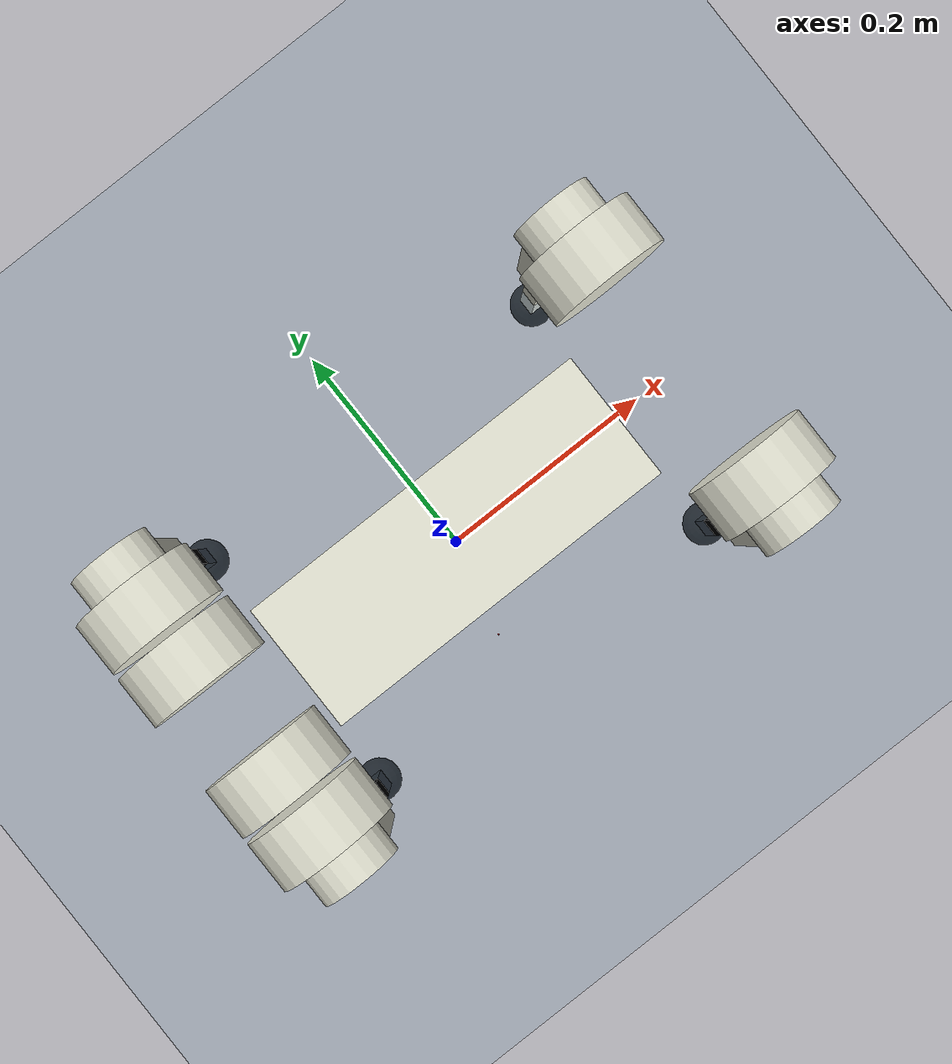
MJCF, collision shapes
<mujoco model="go1_description">
    <compiler angle="radian" meshdir="../meshes/" />
    <size njmax="500" nconmax="100" />
    <option gravity='0 0 -9.806' iterations='50' solver='Newton' timestep='0.005'/>
<!-- friction="0.6 0.3 0.3" -->
    <default>
        <geom contype="1" conaffinity="1" friction="0.3 0.3 0.3" rgba="0.5 0.6 0.7 1" margin="0.001" group="0"/>

        <light castshadow="false" diffuse="1 1 1"/>
        <motor ctrlrange="-300 300" ctrllimited="true"/>
        <camera fovy="60"/>
        <!-- damping="0.1" armature="0.01" frictionloss="0.2"-->
        <joint damping="0.3" armature="0.01" frictionloss="0.1" />

    </default>
=
    <asset>
        <mesh name="trunk" file="trunk.stl" />
        <mesh name="hip" file="hip.stl" />
        <mesh name="thigh_mirror" file="thigh_mirror.stl" />
        <mesh name="calf" file="calf.stl" />
        <mesh name="thigh" file="thigh.stl" />
    </asset>

    <asset>
        <texture type="skybox" builtin="gradient" rgb1="1.0 1.0 1.0" rgb2="1.0 1.0 1.0" width="512" height="512"/>

        <texture type="2d" name="groundplane" builtin="checker" mark="edge" rgb1="0.2 0.3 0.4" rgb2="0.1 0.2 0.3"
            markrgb="0.8 0.8 0.8" width="300" height="300"/>
        <material name="groundplane" texture="groundplane" texuniform="true" texrepeat="5 5" reflectance="0.2"/>
    </asset>

    <visual>
        <rgba com="0.502 1.0 0 0.5" contactforce="0.98 0.4 0.4 0.7" contactpoint="1.0 1.0 0.6 0.4"/>
        <scale com="0.2" forcewidth="0.035" contactwidth="0.10" contactheight="0.04"/>
    </visual>

    <worldbody>

        <light pos="0 0 1.5" dir="0 0 -1" directional="true"/>
        <geom name="floor" size="0 0 0.05" type="plane" material="groundplane"/>

        <body name="trunk" pos="0 0 0.35">
            <inertial pos="0.0116053 0.00442221 0.000106692" quat="0.0111438 0.707126 -0.00935374 0.706938" mass="4.801" diaginertia="0.0447997 0.0366257 0.0162187" />
            <joint type="free" />
            <geom type="mesh" contype="0" conaffinity="0" group="1" rgba="0.913725 0.913725 0.847059 1" mesh="trunk" />
            <geom size="0.13 0.04675 0.057" type="box" rgba="0.913725 0.913725 0.847059 1" />

            <geom size="0.0005 0.0005 0.0005" pos="-0.01592 -0.06659 -0.00617" type="box" rgba="0.8 0 0 0" />
            <site name="imu" pos="0 0 0"/>

            <body name="FR_hip" pos="0.1881 -0.04675 0">
                <inertial pos="-0.00406411 -0.0193463 4.50733e-06" quat="0.467526 0.531662 -0.466259 0.530431" mass="0.679292" diaginertia="0.00131334 0.00122648 0.000728484" />
                <joint name="FR_hip_joint" pos="0 0 0" axis="1 0 0" limited="true" range="-0.802851 0.802851" />
                <geom quat="0 1 0 0" type="mesh" contype="0" conaffinity="0" group="1" rgba="0.913725 0.913725 0.847059 1" mesh="hip" />
                <geom size="0.046 0.02" pos="0 -0.045 0" quat="0.707107 0.707107 0 0" type="cylinder" rgba="0.913725 0.913725 0.847059 0" />
                <geom size="0.031 0.02" pos="0 -0.07 0" quat="0.707107 0.707107 0 0" type="cylinder" rgba="0.913725 0.913725 0.847059 0" />

                <body name="FR_thigh" pos="0 -0.08 0">
                    <inertial pos="-0.003468 0.018947 -0.032736" quat="0.999266 0.00067676 -0.0382978 0.000639813" mass="0.898919" diaginertia="0.00542178 0.00514246 0.000998869" />
                    <joint name="FR_thigh_joint" pos="0 0 0" axis="0 1 0" limited="true" range="-1.0472 4.18879" />
                    <geom type="mesh" contype="0" conaffinity="0" group="1" rgba="0.913725 0.913725 0.847059 1" mesh="thigh_mirror" />
                    <geom size="0.1065 0.01225 0.017" pos="0 0 -0.1065" quat="0.707107 0 0.707107 0" type="box" rgba="0.913725 0.913725 0.847059 0" />
                    <body name="FR_calf" pos="0 0 -0.213">
                        <inertial pos="0.00455603 0.0009473 -0.147239" quat="0.762045 0.00970173 0.0180098 0.647201" mass="0.218015" diaginertia="0.00399678 0.00398122 3.99428e-05" />
                        <joint name="FR_calf_joint" pos="0 0 0" axis="0 1 0" limited="true" range="-2.69653 -0.916298" />
                        <geom type="mesh" contype="0" conaffinity="0" group="1" rgba="0 0 0 1" mesh="calf" />
                        <geom size="0.1065 0.008 0.008" pos="0 0 -0.1065" quat="0.707107 0 0.707107 0" type="box" rgba="0 0 0 0" />
                        <geom size="0.01" pos="0 0 -0.213" contype="0" conaffinity="0" group="1" rgba="0 0 0 1" />
                        <geom size="0.02" pos="0 0 -0.213" rgba="0 0 0 1" />
                    </body>
                </body>
            </body>
            <body name="FL_hip" pos="0.1881 0.04675 0">
                <inertial pos="-0.00406411 0.0193463 4.50733e-06" quat="0.531662 0.467526 -0.530431 0.466259" mass="0.679292" diaginertia="0.00131334 0.00122648 0.000728484" />
                <joint name="FL_hip_joint" pos="0 0 0" axis="1 0 0" limited="true" range="-0.802851 0.802851" />
                <geom type="mesh" contype="0" conaffinity="0" group="1" rgba="0.913725 0.913725 0.847059 1" mesh="hip" />
                <geom size="0.046 0.02" pos="0 0.045 0" quat="0.707107 0.707107 0 0" type="cylinder" rgba="0.913725 0.913725 0.847059 0" />
                <geom size="0.031 0.02" pos="0 0.07 0" quat="0.707107 0.707107 0 0" type="cylinder" rgba="0.913725 0.913725 0.847059 0" />

                <body name="FL_thigh" pos="0 0.08 0">
                    <inertial pos="-0.003468 -0.018947 -0.032736" quat="0.999266 -0.00067676 -0.0382978 -0.000639813" mass="0.898919" diaginertia="0.00542178 0.00514246 0.000998869" />
                    <joint name="FL_thigh_joint" pos="0 0 0" axis="0 1 0" limited="true" range="-1.0472 4.18879" />
                    <geom type="mesh" contype="0" conaffinity="0" group="1" rgba="0.913725 0.913725 0.847059 1" mesh="thigh" />
                    <geom size="0.1065 0.01225 0.017" pos="0 0 -0.1065" quat="0.707107 0 0.707107 0" type="box" rgba="0.913725 0.913725 0.847059 0" />
                    <body name="FL_calf" pos="0 0 -0.213">
                        <inertial pos="0.00455603 0.0009473 -0.147239" quat="0.762045 0.00970173 0.0180098 0.647201" mass="0.218015" diaginertia="0.00399678 0.00398122 3.99428e-05" />
                        <joint name="FL_calf_joint" pos="0 0 0" axis="0 1 0" limited="true" range="-2.69653 -0.916298" />
                        <geom type="mesh" contype="0" conaffinity="0" group="1" rgba="0 0 0 1" mesh="calf" />
                        <geom size="0.1065 0.008 0.008" pos="0 0 -0.1065" quat="0.707107 0 0.707107 0" type="box" rgba="0.913725 0.913725 0.847059 0" />
                        <geom size="0.01" pos="0 0 -0.213" contype="0" conaffinity="0" group="1" rgba="0 0 0 1" />
                        <geom size="0.02" pos="0 0 -0.213" rgba="0 0 0 1" />
                    </body>
                </body>
            </body>
            <body name="RR_hip" pos="-0.1881 -0.04675 0">
                <inertial pos="0.00406411 -0.0193463 4.50733e-06" quat="0.530431 0.466259 -0.531662 0.467526" mass="0.679292" diaginertia="0.00131334 0.00122648 0.000728484" />
                <joint name="RR_hip_joint" pos="0 0 0" axis="1 0 0" limited="true" range="-0.802851 0.802851" />
                <geom quat="0 0 0 -1" type="mesh" contype="0" conaffinity="0" group="1" rgba="0.913725 0.913725 0.847059 1" mesh="hip" />
                <geom size="0.046 0.02" quat="0.707107 0.707107 0 0" type="cylinder" rgba="0.913725 0.913725 0.847059 1" />
                <geom size="0.046 0.02" pos="0 -0.045 0" quat="0.707107 0.707107 0 0" type="cylinder" rgba="0.913725 0.913725 0.847059 0" />
                <geom size="0.031 0.02" pos="0 -0.07 0" quat="0.707107 0.707107 0 0" type="cylinder" rgba="0.913725 0.913725 0.847059 0" />

                <body name="RR_thigh" pos="0 -0.08 0">
                    <inertial pos="-0.003468 0.018947 -0.032736" quat="0.999266 0.00067676 -0.0382978 0.000639813" mass="0.898919" diaginertia="0.00542178 0.00514246 0.000998869" />
                    <joint name="RR_thigh_joint" pos="0 0 0" axis="0 1 0" limited="true" range="-1.0472 4.18879" />
                    <geom type="mesh" contype="0" conaffinity="0" group="1" rgba="0.913725 0.913725 0.847059 1" mesh="thigh_mirror" />
                    <geom size="0.1065 0.01225 0.017" pos="0 0 -0.1065" quat="0.707107 0 0.707107 0" type="box" rgba="0.913725 0.913725 0.847059 0" />
                    <body name="RR_calf" pos="0 0 -0.213">
                        <inertial pos="0.00455603 0.0009473 -0.147239" quat="0.762045 0.00970173 0.0180098 0.647201" mass="0.218015" diaginertia="0.00399678 0.00398122 3.99428e-05" />
                        <joint name="RR_calf_joint" pos="0 0 0" axis="0 1 0" limited="true" range="-2.69653 -0.916298" />
                        <geom type="mesh" contype="0" conaffinity="0" group="1" rgba="0 0 0 1" mesh="calf" />
                        <geom size="0.1065 0.008 0.008" pos="0 0 -0.1065" quat="0.707107 0 0.707107 0" type="box" rgba="0 0 0 0" />
                        <geom size="0.01" pos="0 0 -0.213" contype="0" conaffinity="0" group="1" rgba="0 0 0 1" />
                        <geom size="0.02" pos="0 0 -0.213" rgba="0 0 0 1" />
                    </body>
                </body>
            </body>
            <body name="RL_hip" pos="-0.1881 0.04675 0">
                <inertial pos="0.00406411 0.0193463 4.50733e-06" quat="0.466259 0.530431 -0.467526 0.531662" mass="0.679292" diaginertia="0.00131334 0.00122648 0.000728484" />
                <joint name="RL_hip_joint" pos="0 0 0" axis="1 0 0" limited="true" range="-0.802851 0.802851"  />
                <geom quat="0 0 1 0" type="mesh" contype="0" conaffinity="0" group="1" rgba="0.913725 0.913725 0.847059 1" mesh="hip" />
                <geom size="0.046 0.02" quat="0.707107 0.707107 0 0" type="cylinder" rgba="0.913725 0.913725 0.847059 1" />
                <geom size="0.046 0.02" pos="0 0.045 0" quat="0.707107 0.707107 0 0" type="cylinder" rgba="0.913725 0.913725 0.847059 0" />
                <geom size="0.031 0.02" pos="0 0.07 0" quat="0.707107 0.707107 0 0" type="cylinder" rgba="0.913725 0.913725 0.847059 0" />

                <body name="RL_thigh" pos="0 0.08 0">
                    <inertial pos="-0.003468 -0.018947 -0.032736" quat="0.999266 -0.00067676 -0.0382978 -0.000639813" mass="0.898919" diaginertia="0.00542178 0.00514246 0.000998869" />
                    <joint name="RL_thigh_joint" pos="0 0 0" axis="0 1 0" limited="true" range="-1.0472 4.18879" />
                    <geom type="mesh" contype="0" conaffinity="0" group="1" rgba="0.913725 0.913725 0.847059 1" mesh="thigh" />
                    <geom size="0.1065 0.01225 0.017" pos="0 0 -0.1065" quat="0.707107 0 0.707107 0" type="box" rgba="0.913725 0.913725 0.847059 0" />
                    <body name="RL_calf" pos="0 0 -0.213">
                        <inertial pos="0.00455603 0.0009473 -0.147239" quat="0.762045 0.00970173 0.0180098 0.647201" mass="0.218015" diaginertia="0.00399678 0.00398122 3.99428e-05" />
                        <joint name="RL_calf_joint" pos="0 0 0" axis="0 1 0" limited="true" range="-2.69653 -0.916298" />
                        <geom type="mesh" contype="0" conaffinity="0" group="1" rgba="0 0 0 1" mesh="calf" />
                        <geom size="0.1065 0.008 0.008" pos="0 0 -0.1065" quat="0.707107 0 0.707107 0" type="box" rgba="0 0 0 0" />
                        <geom size="0.01" pos="0 0 -0.213" contype="0" conaffinity="0" group="1" rgba="0 0 0 1" />
                        <geom size="0.02" pos="0 0 -0.213" rgba="0 0 0 1" />
                    </body>
                </body>
            </body>
        </body>
    </worldbody>
    <actuator>

        <motor name="FR_hip"       gear="1" joint="FR_hip_joint"   ctrllimited="true" ctrlrange="-200 200"/>
        <motor name="FR_thigh"     gear="1" joint="FR_thigh_joint" ctrllimited="true" ctrlrange="-200 200"/>
        <motor name="FR_calf"      gear="1" joint="FR_calf_joint"  ctrllimited="true" ctrlrange="-200 200"/>
        <motor name="FL_hip"       gear="1" joint="FL_hip_joint"   ctrllimited="true" ctrlrange="-200 200"/>
        <motor name="FL_thigh"     gear="1" joint="FL_thigh_joint" ctrllimited="true" ctrlrange="-200 200"/>
        <motor name="FL_calf"      gear="1" joint="FL_calf_joint"  ctrllimited="true" ctrlrange="-200 200"/>
        <motor name="RR_hip"       gear="1" joint="RR_hip_joint"   ctrllimited="true" ctrlrange="-200 200"/>
        <motor name="RR_thigh"     gear="1" joint="RR_thigh_joint" ctrllimited="true" ctrlrange="-200 200"/>
        <motor name="RR_calf"      gear="1" joint="RR_calf_joint"  ctrllimited="true" ctrlrange="-200 200"/>
        <motor name="RL_hip"       gear="1" joint="RL_hip_joint"   ctrllimited="true" ctrlrange="-200 200"/>
        <motor name="RL_thigh"     gear="1" joint="RL_thigh_joint" ctrllimited="true" ctrlrange="-200 200"/>
        <motor name="RL_calf"      gear="1" joint="RL_calf_joint"  ctrllimited="true" ctrlrange="-200 200"/>
    </actuator>

    <sensor>

        <jointpos name="FR_hip_pos"     joint="FR_hip_joint"/>
        <jointpos name="FR_thigh_pos"   joint="FR_thigh_joint"/>
        <jointpos name="FR_calf_pos"    joint="FR_calf_joint"/>
        <jointpos name="FL_hip_pos"     joint="FL_hip_joint"/>
        <jointpos name="FL_thigh_pos"   joint="FL_thigh_joint"/>
        <jointpos name="FL_calf_pos"    joint="FL_calf_joint"/>
        <jointpos name="RR_hip_pos"     joint="RR_hip_joint"/>
        <jointpos name="RR_thigh_pos"   joint="RR_thigh_joint"/>
        <jointpos name="RR_calf_pos"    joint="RR_calf_joint" />
        <jointpos name="RL_hip_pos"     joint="RL_hip_joint"/>
        <jointpos name="RL_thigh_pos"   joint="RL_thigh_joint"/>
        <jointpos name="RL_calf_pos"    joint="RL_calf_joint"/>

        <jointvel name="FR_hip_vel"     joint="FR_hip_joint"/>
        <jointvel name="FR_thigh_vel"   joint="FR_thigh_joint"/>
        <jointvel name="FR_calf_vel"    joint="FR_calf_joint"/>
        <jointvel name="FL_hip_vel"     joint="FL_hip_joint"/>
        <jointvel name="FL_thigh_vel"   joint="FL_thigh_joint"/>
        <jointvel name="FL_calf_vel"    joint="FL_calf_joint"/>
        <jointvel name="RR_hip_vel"     joint="RR_hip_joint"/>
        <jointvel name="RR_thigh_vel"   joint="RR_thigh_joint"/>
        <jointvel name="RR_calf_vel"    joint="RR_calf_joint" />
        <jointvel name="RL_hip_vel"     joint="RL_hip_joint"/>
        <jointvel name="RL_thigh_vel"   joint="RL_thigh_joint"/>
        <jointvel name="RL_calf_vel"    joint="RL_calf_joint"/>

        <accelerometer name="Body_Acc" site="imu"/>

        <gyro name="Body_Gyro" site="imu"/>

        <framequat     name='orientation' objtype='site' noise='0.001' objname='imu'/>
        <framepos     name='position' objtype='site' noise='0.001' objname='imu'/>
        <gyro          name='angular-velocity'    site='imu' noise='0.005' cutoff='34.9'/>
        <velocimeter   name='linear-velocity'     site='imu' noise='0.001' cutoff='30'/>
        <accelerometer name='linear-acceleration' site='imu' noise='0.005' cutoff='157'/>
        <magnetometer  name='magnetometer'        site='imu'/>

    </sensor>
</mujoco>
